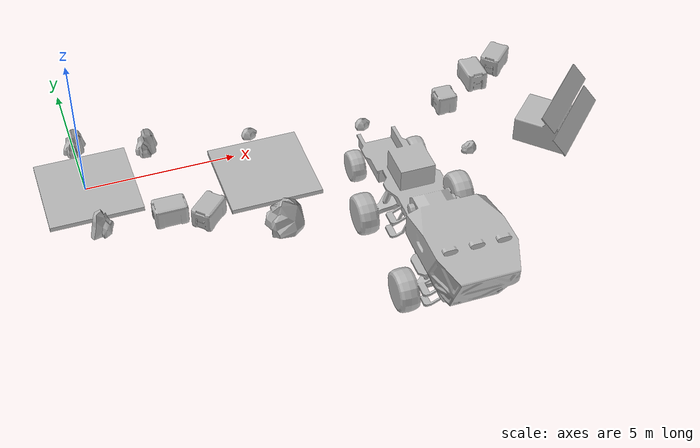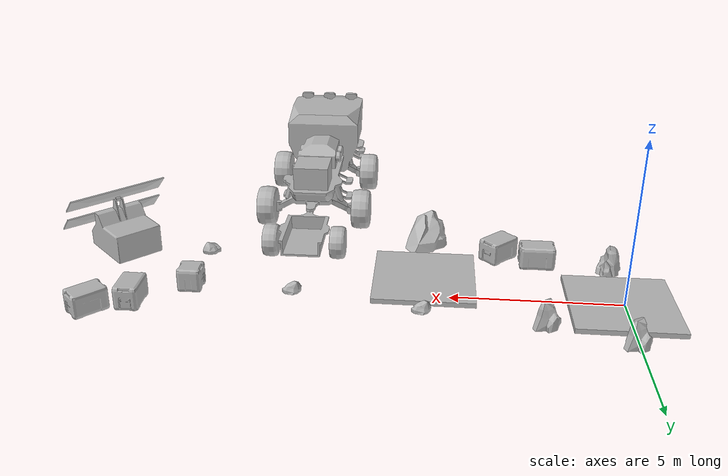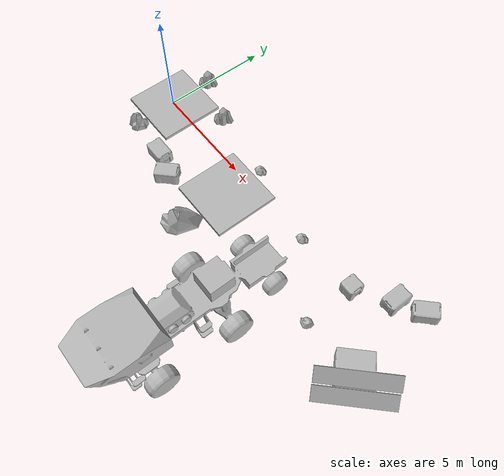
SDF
<sdf version="1.6">
 <world name="SRC_finals">
  <include>
   <name>walkway_1</name>
   <pose>0.09
      0
      -0.052151
      0
      0
      3.141592653589793</pose>
   <uri>model://walkway_finish_opposite</uri>
  </include>
  <include>
   <name>bling_1</name>
   <pose>0.0900000000000003
      2.024
      0
      0
      0
      -2.4492935982947064e-16</pose>
   <uri>model://mars_rock_2</uri>
  </include>
  <include>
   <name>bling_2</name>
   <pose>0.08999999999999976
      -2.024
      0
      0
      0
      3.141592653589793</pose>
   <uri>model://mars_rock_2</uri>
  </include>
  <include>
   <name>bling_3</name>
   <pose>2.3760000000000003
      1.2619999999999996
      0
      0
      0
      -2.4492935982947064e-16</pose>
   <uri>model://mars_rock_2</uri>
  </include>
  <include>
   <name>bling_4</name>
   <pose>2.293909367271195
      -2.25305038856861
      0
      0
      0
      3.141592653589793</pose>
   <uri>model://mars_crate_long</uri>
  </include>
  <include>
   <name>bling_5</name>
   <pose>3.4539547922204332
      -2.6397649636193723
      0
      0
      0
      -2.356194490192345</pose>
   <uri>model://mars_crate_long</uri>
  </include>
  <include>
   <name>walkway_4</name>
   <pose>5.739954792220433
      -1.0777649636193727
      -0.052151
      0
      0
      3.141592653589793</pose>
   <uri>model://walkway_finish_opposite</uri>
  </include>
  <include>
   <name>bling_6</name>
   <pose>5.739954792220433
      0.8462350363806274
      0
      0
      0
      -1.8369701987210297e-16</pose>
   <uri>model://mars_rock_1</uri>
  </include>
  <include>
   <name>bling_7</name>
   <pose>5.739954792220433
      -3.701764963619373
      0
      0
      0
      3.141592653589793</pose>
   <uri>model://mars_rock_3</uri>
  </include>
  <include>
   <pose>9.549954792220433
        -6.339764963619373
        0
        0
        0
        -1.8369701987210297e-16</pose>
   <uri>model://mars_explorer</uri>
  </include>
  <include>
   <name>bling_8</name>
   <pose>9.549954792220433
      0.08423503638062702
      0
      0
      0
      -1.8369701987210297e-16</pose>
   <uri>model://mars_rock_1</uri>
  </include>
  <include>
   <name>bling_9</name>
   <pose>12.597954792220435
      0.08423503638062657
      0
      0
      0
      -1.8369701987210297e-16</pose>
   <uri>model://mars_crate</uri>
  </include>
  <include>
   <name>bling_10</name>
   <pose>12.597954792220435
      -2.2397649636193733
      0
      0
      0
      3.141592653589793</pose>
   <uri>model://mars_rock_1</uri>
  </include>
  <include>
   <pose>15.049597521873036
        -2.004834335800273
        0.2
        0
        0
        -2.356194490192345</pose>
   <uri>model://solar_array</uri>
  </include>
  <include>
   <name>bling_11</name>
   <pose>14.095003367271197
      1.105021287858163
      0
      0
      0
      1.5707963267948963</pose>
   <uri>model://mars_crate_long</uri>
  </include>
  <include>
   <name>bling_12</name>
   <pose>15.188727852139301
      1.6518487759221312
      0
      0
      0
      0.785398163397448</pose>
   <uri>model://mars_crate_long</uri>
  </include>
 </world>
</sdf>
